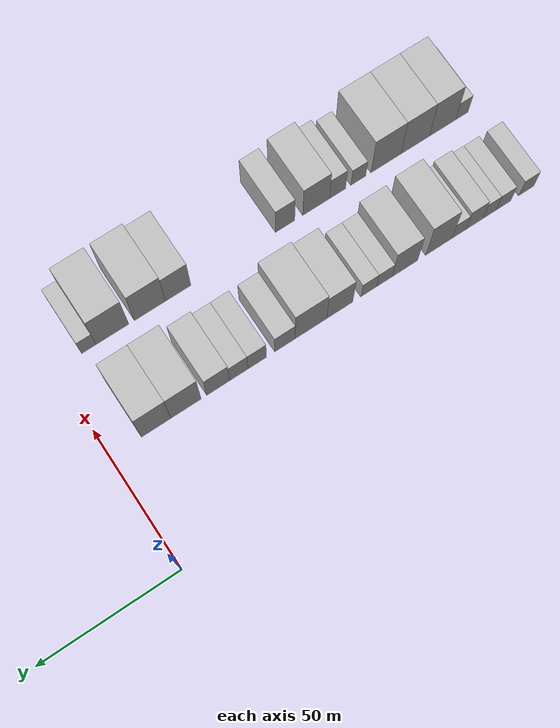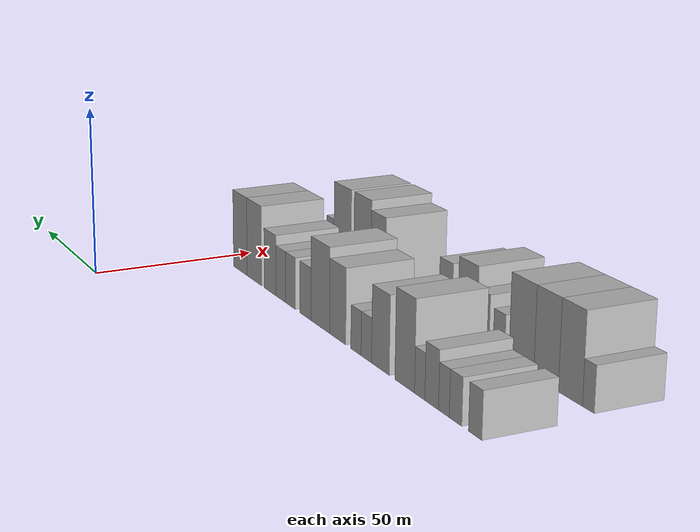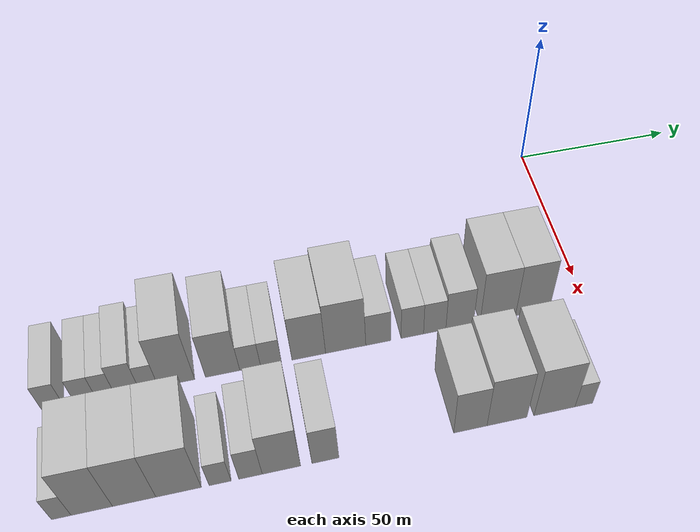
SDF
<sdf version="1.6">
 <world name="default">
  <model name="building_15">
   <static>1</static>
   <pose>50.0000 -153.5660 0 0.000000 0.000000 0.000000</pose>
   <link name="link">
    <pose>0 0 6.00 0 0 0</pose>
    <collision name="collision"><geometry><box><size>20.0000 5.9048 12.0000</size></box></geometry></collision>
    <visual name="visual">
     <cast_shadows>0</cast_shadows>
     <geometry><box><size>20.0000 5.9048 12.0000</size></box></geometry>
     <material>
      <script>
       <uri>model://HANNAS_wall/materials/scripts</uri>
       <uri>model://HANNAS_wall/materials/textures</uri>
       <name>vrc/HANNAS_wall</name>
      </script>
     </material>
    </visual>
   </link>
  </model>
  <model name="building_16">
   <static>1</static>
   <pose>50.0000 -144.7277 0 0.000000 0.000000 0.000000</pose>
   <link name="link">
    <pose>0 0 6.00 0 0 0</pose>
    <collision name="collision"><geometry><box><size>20.0000 5.7719 12.0000</size></box></geometry></collision>
    <visual name="visual">
     <cast_shadows>0</cast_shadows>
     <geometry><box><size>20.0000 5.7719 12.0000</size></box></geometry>
     <material>
      <script>
       <uri>model://HANNAS_wall/materials/scripts</uri>
       <uri>model://HANNAS_wall/materials/textures</uri>
       <name>vrc/HANNAS_wall</name>
      </script>
     </material>
    </visual>
   </link>
  </model>
  <model name="building_17">
   <static>1</static>
   <pose>50.0000 -139.3136 0 0.000000 0.000000 0.000000</pose>
   <link name="link">
    <pose>0 0 6.00 0 0 0</pose>
    <collision name="collision"><geometry><box><size>20.0000 5.0563 12.0000</size></box></geometry></collision>
    <visual name="visual">
     <cast_shadows>0</cast_shadows>
     <geometry><box><size>20.0000 5.0563 12.0000</size></box></geometry>
     <material>
      <script>
       <uri>model://HANNAS_wall/materials/scripts</uri>
       <uri>model://HANNAS_wall/materials/textures</uri>
       <name>vrc/HANNAS_wall</name>
      </script>
     </material>
    </visual>
   </link>
  </model>
  <model name="building_18">
   <static>1</static>
   <pose>50.0000 -133.4792 0 0.000000 0.000000 0.000000</pose>
   <link name="link">
    <pose>0 0 7.50 0 0 0</pose>
    <collision name="collision"><geometry><box><size>20.0000 6.6124 15.0000</size></box></geometry></collision>
    <visual name="visual">
     <cast_shadows>0</cast_shadows>
     <geometry><box><size>20.0000 6.6124 15.0000</size></box></geometry>
     <material>
      <script>
       <uri>model://HANNAS_wall/materials/scripts</uri>
       <uri>model://HANNAS_wall/materials/textures</uri>
       <name>vrc/HANNAS_wall</name>
      </script>
     </material>
    </visual>
   </link>
  </model>
  <model name="building_19">
   <static>1</static>
   <pose>50.0000 -127.5917 0 0.000000 0.000000 0.000000</pose>
   <link name="link">
    <pose>0 0 6.00 0 0 0</pose>
    <collision name="collision"><geometry><box><size>20.0000 5.1625 12.0000</size></box></geometry></collision>
    <visual name="visual">
     <cast_shadows>0</cast_shadows>
     <geometry><box><size>20.0000 5.1625 12.0000</size></box></geometry>
     <material>
      <script>
       <uri>model://HANNAS_wall/materials/scripts</uri>
       <uri>model://HANNAS_wall/materials/textures</uri>
       <name>vrc/HANNAS_wall</name>
      </script>
     </material>
    </visual>
   </link>
  </model>
  <model name="building_20">
   <static>1</static>
   <pose>50.0000 -119.9798 0 0.000000 0.000000 0.000000</pose>
   <link name="link">
    <pose>0 0 12.00 0 0 0</pose>
    <collision name="collision"><geometry><box><size>20.0000 10.0615 24.0000</size></box></geometry></collision>
    <visual name="visual">
     <cast_shadows>0</cast_shadows>
     <geometry><box><size>20.0000 10.0615 24.0000</size></box></geometry>
     <material>
      <script>
       <uri>model://HANNAS_wall/materials/scripts</uri>
       <uri>model://HANNAS_wall/materials/textures</uri>
       <name>vrc/HANNAS_wall</name>
      </script>
     </material>
    </visual>
   </link>
  </model>
  <model name="building_21">
   <static>1</static>
   <pose>50.0000 -107.1472 0 0.000000 0.000000 0.000000</pose>
   <link name="link">
    <pose>0 0 10.50 0 0 0</pose>
    <collision name="collision"><geometry><box><size>20.0000 9.6036 21.0000</size></box></geometry></collision>
    <visual name="visual">
     <cast_shadows>0</cast_shadows>
     <geometry><box><size>20.0000 9.6036 21.0000</size></box></geometry>
     <material>
      <script>
       <uri>model://HANNAS_wall/materials/scripts</uri>
       <uri>model://HANNAS_wall/materials/textures</uri>
       <name>vrc/HANNAS_wall</name>
      </script>
     </material>
    </visual>
   </link>
  </model>
  <model name="building_22">
   <static>1</static>
   <pose>50.0000 -99.4069 0 0.000000 0.000000 0.000000</pose>
   <link name="link">
    <pose>0 0 6.00 0 0 0</pose>
    <collision name="collision"><geometry><box><size>20.0000 5.8770 12.0000</size></box></geometry></collision>
    <visual name="visual">
     <cast_shadows>0</cast_shadows>
     <geometry><box><size>20.0000 5.8770 12.0000</size></box></geometry>
     <material>
      <script>
       <uri>model://HANNAS_wall/materials/scripts</uri>
       <uri>model://HANNAS_wall/materials/textures</uri>
       <name>vrc/HANNAS_wall</name>
      </script>
     </material>
    </visual>
   </link>
  </model>
  <model name="building_23">
   <static>1</static>
   <pose>50.0000 -93.5156 0 0.000000 0.000000 0.000000</pose>
   <link name="link">
    <pose>0 0 6.00 0 0 0</pose>
    <collision name="collision"><geometry><box><size>20.0000 5.9058 12.0000</size></box></geometry></collision>
    <visual name="visual">
     <cast_shadows>0</cast_shadows>
     <geometry><box><size>20.0000 5.9058 12.0000</size></box></geometry>
     <material>
      <script>
       <uri>model://HANNAS_wall/materials/scripts</uri>
       <uri>model://HANNAS_wall/materials/textures</uri>
       <name>vrc/HANNAS_wall</name>
      </script>
     </material>
    </visual>
   </link>
  </model>
  <model name="building_24">
   <static>1</static>
   <pose>50.0000 -82.7268 0 0.000000 0.000000 0.000000</pose>
   <link name="link">
    <pose>0 0 10.50 0 0 0</pose>
    <collision name="collision"><geometry><box><size>20.0000 9.6717 21.0000</size></box></geometry></collision>
    <visual name="visual">
     <cast_shadows>0</cast_shadows>
     <geometry><box><size>20.0000 9.6717 21.0000</size></box></geometry>
     <material>
      <script>
       <uri>model://HANNAS_wall/materials/scripts</uri>
       <uri>model://HANNAS_wall/materials/textures</uri>
       <name>vrc/HANNAS_wall</name>
      </script>
     </material>
    </visual>
   </link>
  </model>
  <model name="building_25">
   <static>1</static>
   <pose>50.0000 -72.0523 0 0.000000 0.000000 0.000000</pose>
   <link name="link">
    <pose>0 0 12.00 0 0 0</pose>
    <collision name="collision"><geometry><box><size>20.0000 11.6772 24.0000</size></box></geometry></collision>
    <visual name="visual">
     <cast_shadows>0</cast_shadows>
     <geometry><box><size>20.0000 11.6772 24.0000</size></box></geometry>
     <material>
      <script>
       <uri>model://HANNAS_wall/materials/scripts</uri>
       <uri>model://HANNAS_wall/materials/textures</uri>
       <name>vrc/HANNAS_wall</name>
      </script>
     </material>
    </visual>
   </link>
  </model>
  <model name="building_26">
   <static>1</static>
   <pose>50.0000 -62.5154 0 0.000000 0.000000 0.000000</pose>
   <link name="link">
    <pose>0 0 7.50 0 0 0</pose>
    <collision name="collision"><geometry><box><size>20.0000 7.3966 15.0000</size></box></geometry></collision>
    <visual name="visual">
     <cast_shadows>0</cast_shadows>
     <geometry><box><size>20.0000 7.3966 15.0000</size></box></geometry>
     <material>
      <script>
       <uri>model://HANNAS_wall/materials/scripts</uri>
       <uri>model://HANNAS_wall/materials/textures</uri>
       <name>vrc/HANNAS_wall</name>
      </script>
     </material>
    </visual>
   </link>
  </model>
  <model name="building_27">
   <static>1</static>
   <pose>50.0000 -52.4960 0 0.000000 0.000000 0.000000</pose>
   <link name="link">
    <pose>0 0 7.50 0 0 0</pose>
    <collision name="collision"><geometry><box><size>20.0000 6.6422 15.0000</size></box></geometry></collision>
    <visual name="visual">
     <cast_shadows>0</cast_shadows>
     <geometry><box><size>20.0000 6.6422 15.0000</size></box></geometry>
     <material>
      <script>
       <uri>model://HANNAS_wall/materials/scripts</uri>
       <uri>model://HANNAS_wall/materials/textures</uri>
       <name>vrc/HANNAS_wall</name>
      </script>
     </material>
    </visual>
   </link>
  </model>
  <model name="building_28">
   <static>1</static>
   <pose>50.0000 -45.8515 0 0.000000 0.000000 0.000000</pose>
   <link name="link">
    <pose>0 0 7.50 0 0 0</pose>
    <collision name="collision"><geometry><box><size>20.0000 6.6469 15.0000</size></box></geometry></collision>
    <visual name="visual">
     <cast_shadows>0</cast_shadows>
     <geometry><box><size>20.0000 6.6469 15.0000</size></box></geometry>
     <material>
      <script>
       <uri>model://HANNAS_wall/materials/scripts</uri>
       <uri>model://HANNAS_wall/materials/textures</uri>
       <name>vrc/HANNAS_wall</name>
      </script>
     </material>
    </visual>
   </link>
  </model>
  <model name="building_29">
   <static>1</static>
   <pose>50.0000 -38.3712 0 0.000000 0.000000 0.000000</pose>
   <link name="link">
    <pose>0 0 9.00 0 0 0</pose>
    <collision name="collision"><geometry><box><size>20.0000 8.3137 18.0000</size></box></geometry></collision>
    <visual name="visual">
     <cast_shadows>0</cast_shadows>
     <geometry><box><size>20.0000 8.3137 18.0000</size></box></geometry>
     <material>
      <script>
       <uri>model://HANNAS_wall/materials/scripts</uri>
       <uri>model://HANNAS_wall/materials/textures</uri>
       <name>vrc/HANNAS_wall</name>
      </script>
     </material>
    </visual>
   </link>
  </model>
  <model name="building_30">
   <static>1</static>
   <pose>50.0000 -26.8099 0 0.000000 0.000000 0.000000</pose>
   <link name="link">
    <pose>0 0 12.00 0 0 0</pose>
    <collision name="collision"><geometry><box><size>20.0000 10.8089 24.0000</size></box></geometry></collision>
    <visual name="visual">
     <cast_shadows>0</cast_shadows>
     <geometry><box><size>20.0000 10.8089 24.0000</size></box></geometry>
     <material>
      <script>
       <uri>model://HANNAS_wall/materials/scripts</uri>
       <uri>model://HANNAS_wall/materials/textures</uri>
       <name>vrc/HANNAS_wall</name>
      </script>
     </material>
    </visual>
   </link>
  </model>
  <model name="building_31">
   <static>1</static>
   <pose>50.0000 -16.1698 0 0.000000 0.000000 0.000000</pose>
   <link name="link">
    <pose>0 0 12.00 0 0 0</pose>
    <collision name="collision"><geometry><box><size>20.0000 10.4713 24.0000</size></box></geometry></collision>
    <visual name="visual">
     <cast_shadows>0</cast_shadows>
     <geometry><box><size>20.0000 10.4713 24.0000</size></box></geometry>
     <material>
      <script>
       <uri>model://HANNAS_wall/materials/scripts</uri>
       <uri>model://HANNAS_wall/materials/textures</uri>
       <name>vrc/HANNAS_wall</name>
      </script>
     </material>
    </visual>
   </link>
  </model>
  <model name="building_74">
   <static>1</static>
   <pose>82.0000 -151.5237 0 0.000000 0.000000 0.000000</pose>
   <link name="link">
    <pose>0 0 6.00 0 0 0</pose>
    <collision name="collision"><geometry><box><size>20.0000 4.8541 12.0000</size></box></geometry></collision>
    <visual name="visual">
     <cast_shadows>0</cast_shadows>
     <geometry><box><size>20.0000 4.8541 12.0000</size></box></geometry>
     <material>
      <script>
       <uri>model://HANNAS_wall/materials/scripts</uri>
       <uri>model://HANNAS_wall/materials/textures</uri>
       <name>vrc/HANNAS_wall</name>
      </script>
     </material>
    </visual>
   </link>
  </model>
  <model name="building_75">
   <static>1</static>
   <pose>82.0000 -143.9487 0 0.000000 0.000000 0.000000</pose>
   <link name="link">
    <pose>0 0 12.00 0 0 0</pose>
    <collision name="collision"><geometry><box><size>20.0000 10.2959 24.0000</size></box></geometry></collision>
    <visual name="visual">
     <cast_shadows>0</cast_shadows>
     <geometry><box><size>20.0000 10.2959 24.0000</size></box></geometry>
     <material>
      <script>
       <uri>model://HANNAS_wall/materials/scripts</uri>
       <uri>model://HANNAS_wall/materials/textures</uri>
       <name>vrc/HANNAS_wall</name>
      </script>
     </material>
    </visual>
   </link>
  </model>
  <model name="building_76">
   <static>1</static>
   <pose>82.0000 -133.3387 0 0.000000 0.000000 0.000000</pose>
   <link name="link">
    <pose>0 0 12.00 0 0 0</pose>
    <collision name="collision"><geometry><box><size>20.0000 10.9241 24.0000</size></box></geometry></collision>
    <visual name="visual">
     <cast_shadows>0</cast_shadows>
     <geometry><box><size>20.0000 10.9241 24.0000</size></box></geometry>
     <material>
      <script>
       <uri>model://HANNAS_wall/materials/scripts</uri>
       <uri>model://HANNAS_wall/materials/textures</uri>
       <name>vrc/HANNAS_wall</name>
      </script>
     </material>
    </visual>
   </link>
  </model>
  <model name="building_77">
   <static>1</static>
   <pose>82.0000 -122.0823 0 0.000000 0.000000 0.000000</pose>
   <link name="link">
    <pose>0 0 12.00 0 0 0</pose>
    <collision name="collision"><geometry><box><size>20.0000 11.5886 24.0000</size></box></geometry></collision>
    <visual name="visual">
     <cast_shadows>0</cast_shadows>
     <geometry><box><size>20.0000 11.5886 24.0000</size></box></geometry>
     <material>
      <script>
       <uri>model://HANNAS_wall/materials/scripts</uri>
       <uri>model://HANNAS_wall/materials/textures</uri>
       <name>vrc/HANNAS_wall</name>
      </script>
     </material>
    </visual>
   </link>
  </model>
  <model name="building_78">
   <static>1</static>
   <pose>82.0000 -111.4447 0 0.000000 0.000000 0.000000</pose>
   <link name="link">
    <pose>0 0 6.00 0 0 0</pose>
    <collision name="collision"><geometry><box><size>20.0000 5.6868 12.0000</size></box></geometry></collision>
    <visual name="visual">
     <cast_shadows>0</cast_shadows>
     <geometry><box><size>20.0000 5.6868 12.0000</size></box></geometry>
     <material>
      <script>
       <uri>model://HANNAS_wall/materials/scripts</uri>
       <uri>model://HANNAS_wall/materials/textures</uri>
       <name>vrc/HANNAS_wall</name>
      </script>
     </material>
    </visual>
   </link>
  </model>
  <model name="building_79">
   <static>1</static>
   <pose>82.0000 -103.5504 0 0.000000 0.000000 0.000000</pose>
   <link name="link">
    <pose>0 0 7.50 0 0 0</pose>
    <collision name="collision"><geometry><box><size>20.0000 6.1018 15.0000</size></box></geometry></collision>
    <visual name="visual">
     <cast_shadows>0</cast_shadows>
     <geometry><box><size>20.0000 6.1018 15.0000</size></box></geometry>
     <material>
      <script>
       <uri>model://HANNAS_wall/materials/scripts</uri>
       <uri>model://HANNAS_wall/materials/textures</uri>
       <name>vrc/HANNAS_wall</name>
      </script>
     </material>
    </visual>
   </link>
  </model>
  <model name="building_80">
   <static>1</static>
   <pose>82.0000 -95.4475 0 0.000000 0.000000 0.000000</pose>
   <link name="link">
    <pose>0 0 10.50 0 0 0</pose>
    <collision name="collision"><geometry><box><size>20.0000 10.1040 21.0000</size></box></geometry></collision>
    <visual name="visual">
     <cast_shadows>0</cast_shadows>
     <geometry><box><size>20.0000 10.1040 21.0000</size></box></geometry>
     <material>
      <script>
       <uri>model://HANNAS_wall/materials/scripts</uri>
       <uri>model://HANNAS_wall/materials/textures</uri>
       <name>vrc/HANNAS_wall</name>
      </script>
     </material>
    </visual>
   </link>
  </model>
  <model name="building_81">
   <static>1</static>
   <pose>82.0000 -83.7931 0 0.000000 0.000000 0.000000</pose>
   <link name="link">
    <pose>0 0 9.00 0 0 0</pose>
    <collision name="collision"><geometry><box><size>20.0000 7.2047 18.0000</size></box></geometry></collision>
    <visual name="visual">
     <cast_shadows>0</cast_shadows>
     <geometry><box><size>20.0000 7.2047 18.0000</size></box></geometry>
     <material>
      <script>
       <uri>model://HANNAS_wall/materials/scripts</uri>
       <uri>model://HANNAS_wall/materials/textures</uri>
       <name>vrc/HANNAS_wall</name>
      </script>
     </material>
    </visual>
   </link>
  </model>
  <model name="building_82">
   <static>1</static>
   <pose>82.0000 -44.2752 0 0.000000 0.000000 0.000000</pose>
   <link name="link">
    <pose>0 0 10.50 0 0 0</pose>
    <collision name="collision"><geometry><box><size>20.0000 9.2770 21.0000</size></box></geometry></collision>
    <visual name="visual">
     <cast_shadows>0</cast_shadows>
     <geometry><box><size>20.0000 9.2770 21.0000</size></box></geometry>
     <material>
      <script>
       <uri>model://HANNAS_wall/materials/scripts</uri>
       <uri>model://HANNAS_wall/materials/textures</uri>
       <name>vrc/HANNAS_wall</name>
      </script>
     </material>
    </visual>
   </link>
  </model>
  <model name="building_83">
   <static>1</static>
   <pose>82.0000 -33.9965 0 0.000000 0.000000 0.000000</pose>
   <link name="link">
    <pose>0 0 12.00 0 0 0</pose>
    <collision name="collision"><geometry><box><size>20.0000 11.2805 24.0000</size></box></geometry></collision>
    <visual name="visual">
     <cast_shadows>0</cast_shadows>
     <geometry><box><size>20.0000 11.2805 24.0000</size></box></geometry>
     <material>
      <script>
       <uri>model://HANNAS_wall/materials/scripts</uri>
       <uri>model://HANNAS_wall/materials/textures</uri>
       <name>vrc/HANNAS_wall</name>
      </script>
     </material>
    </visual>
   </link>
  </model>
  <model name="building_84">
   <static>1</static>
   <pose>82.0000 -20.4805 0 0.000000 0.000000 0.000000</pose>
   <link name="link">
    <pose>0 0 12.00 0 0 0</pose>
    <collision name="collision"><geometry><box><size>20.0000 11.7514 24.0000</size></box></geometry></collision>
    <visual name="visual">
     <cast_shadows>0</cast_shadows>
     <geometry><box><size>20.0000 11.7514 24.0000</size></box></geometry>
     <material>
      <script>
       <uri>model://HANNAS_wall/materials/scripts</uri>
       <uri>model://HANNAS_wall/materials/textures</uri>
       <name>vrc/HANNAS_wall</name>
      </script>
     </material>
    </visual>
   </link>
  </model>
  <model name="building_85">
   <static>1</static>
   <pose>82.0000 -12.0353 0 0.000000 0.000000 0.000000</pose>
   <link name="link">
    <pose>0 0 6.00 0 0 0</pose>
    <collision name="collision"><geometry><box><size>20.0000 5.1391 12.0000</size></box></geometry></collision>
    <visual name="visual">
     <cast_shadows>0</cast_shadows>
     <geometry><box><size>20.0000 5.1391 12.0000</size></box></geometry>
     <material>
      <script>
       <uri>model://HANNAS_wall/materials/scripts</uri>
       <uri>model://HANNAS_wall/materials/textures</uri>
       <name>vrc/HANNAS_wall</name>
      </script>
     </material>
    </visual>
   </link>
  </model>
 </world>
</sdf>
